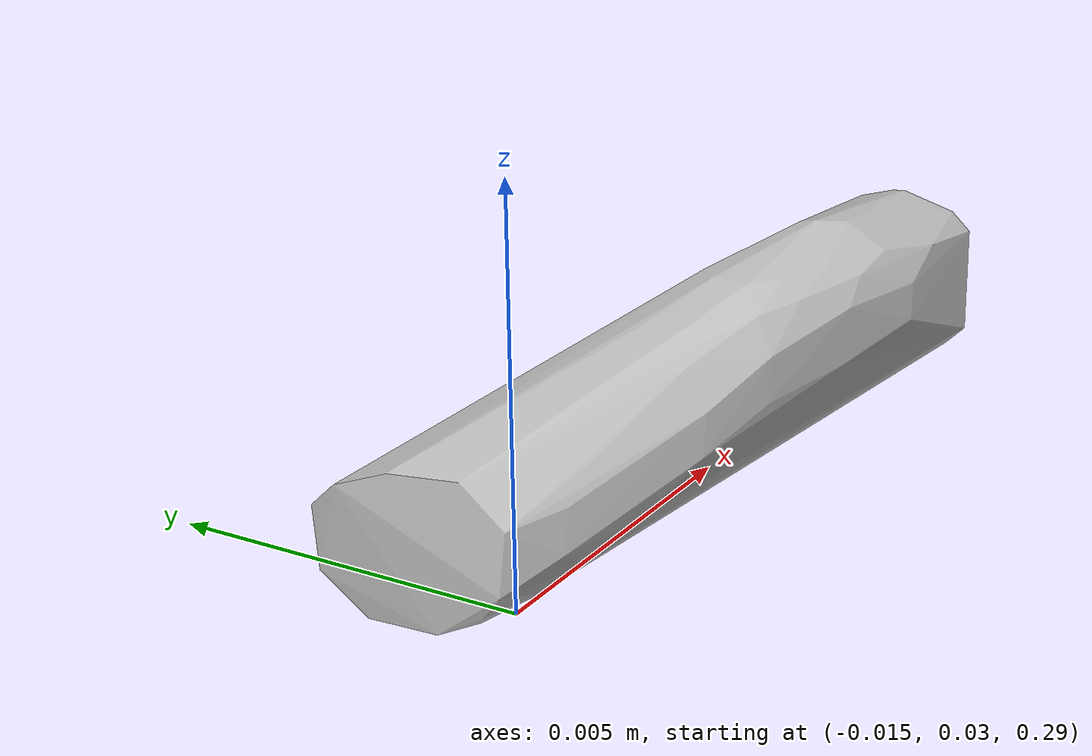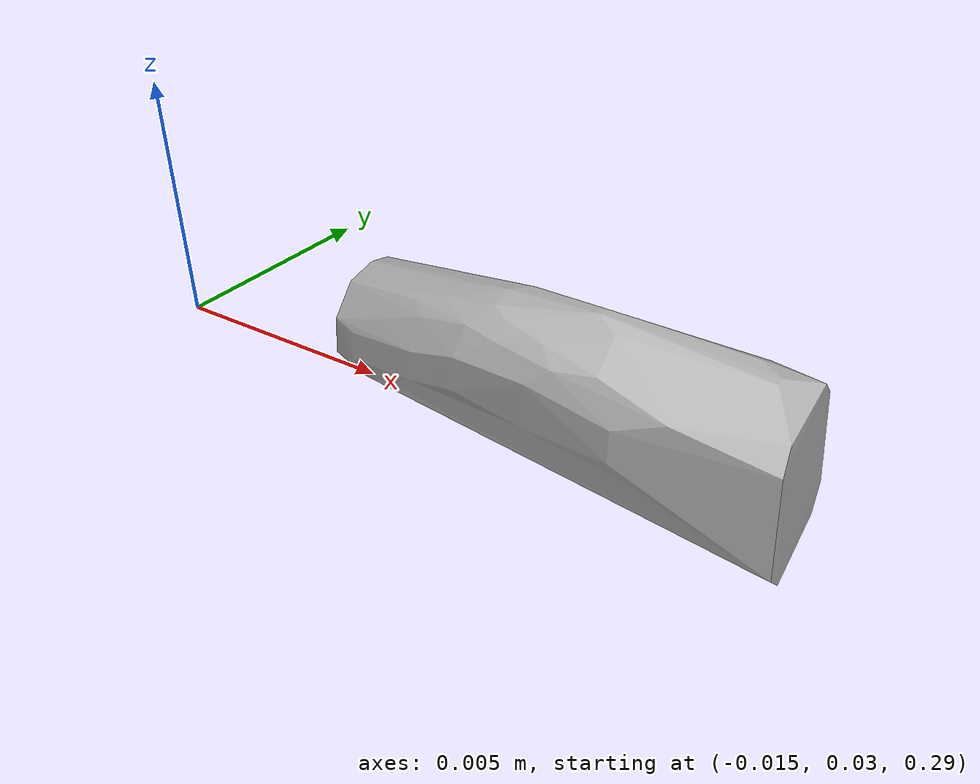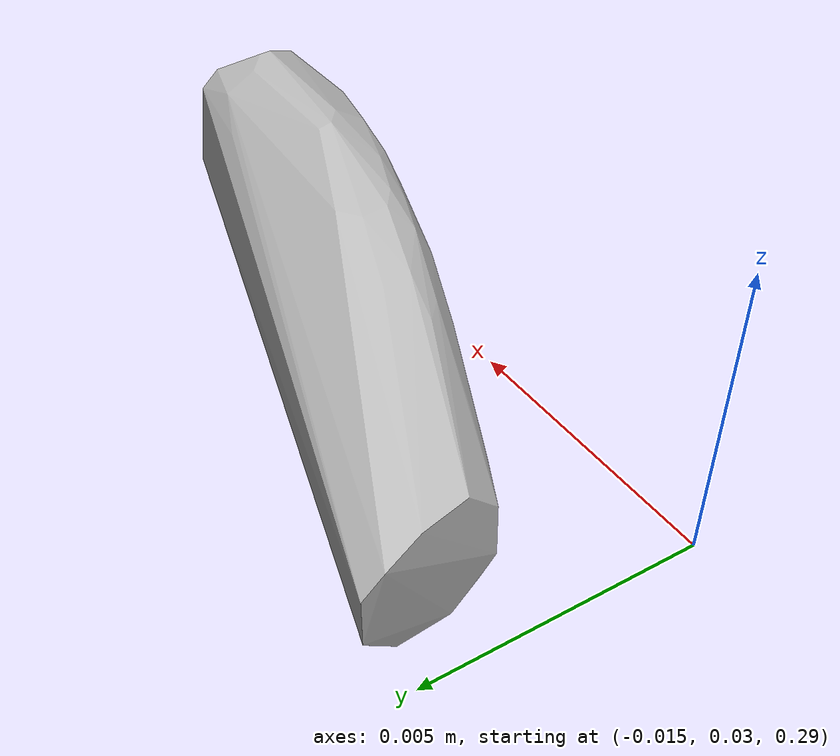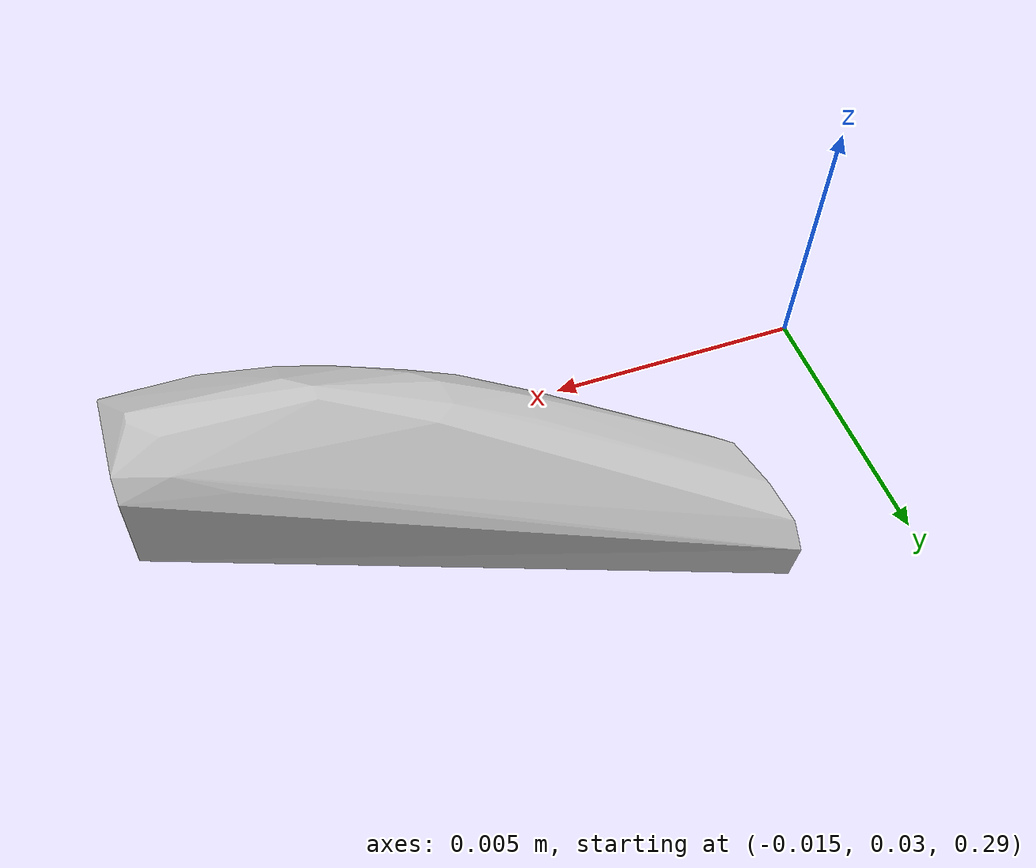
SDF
<?xml version="1.0"?>
<sdf version="1.7">
  <model name="vascular_partexport031">
    <link name="vascular_partexport031_body">
      <visual name="vascular_partexport031_visual">
        <geometry>
          <mesh>
            <uri>vascular_partexport031.obj</uri>
          </mesh>
        </geometry>
      </visual>
      <collision name="vascular_partexport031_collision">
        <geometry>
          <mesh>
            <uri>vascular_partexport031.obj</uri>
          </mesh>
        </geometry>
      </collision>
    </link>
    <frame name="vascular_partexport031_center">
      <pose relative_to="vascular_partexport031_body">0 0 0 0 0 0</pose>
    </frame>
  </model>
</sdf>
